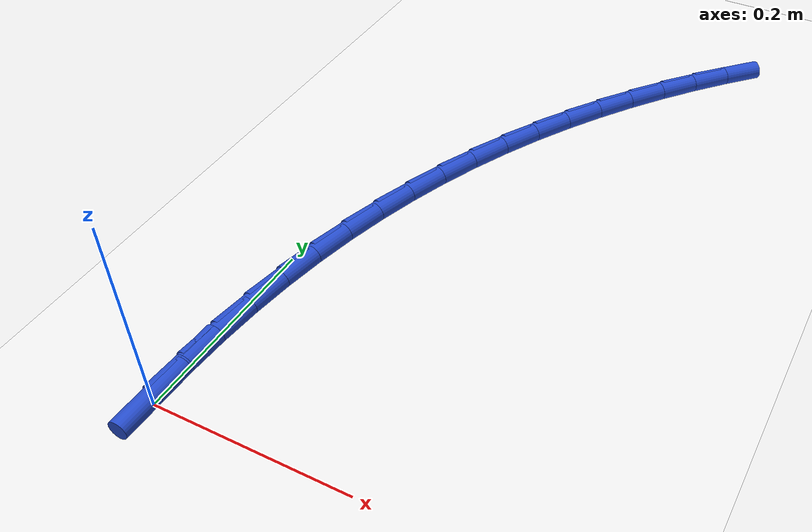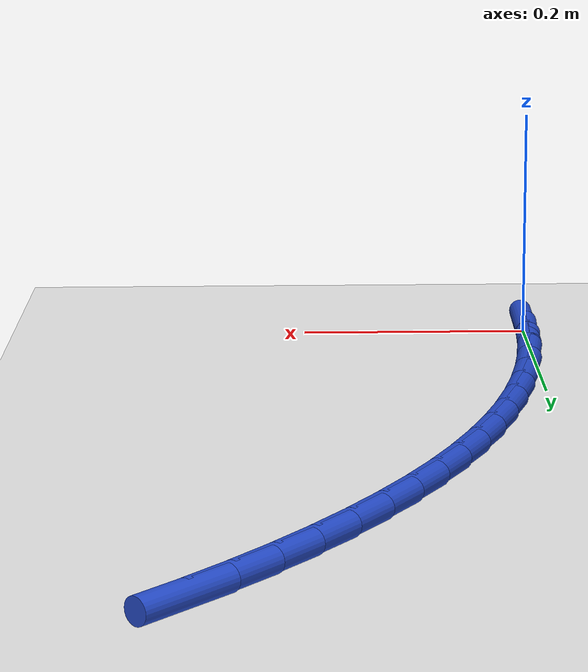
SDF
<sdf version="1.6">
 <world name="default">
  <model name="ground_plane">
   <static>1</static>
   <link name="link">
    <collision name="collision">
     <geometry><plane><normal>0 0 1</normal><size>100 100</size></plane></geometry>
     <surface><friction><ode><mu>100</mu><mu2>50</mu2></ode></friction></surface>
    </collision>
    <visual name="visual">
     <cast_shadows>0</cast_shadows>
     <geometry><plane><normal>0 0 1</normal><size>100 100</size></plane></geometry>
     <material>
      <script><uri>file://media/materials/scripts/gazebo.material</uri><name>Gazebo/WhiteGlow</name></script>
     </material>
    </visual>
   </link>
  </model>
  <model name="line">
   <link name="link_1">
    <pose>0.0008242828212076035 0.04224080998406334 0.01 0 1.57 1.509834602419437</pose>
    <collision name="collision">
     <geometry><cylinder><radius>0.01</radius><length>0.08</length></cylinder></geometry>
    </collision>
    <visual name="visual">
     <material>
      <script><name>Gazebo/Blue</name><uri>file://media/materials/scripts/gazebo.material</uri></script>
     </material>
     <geometry><cylinder><radius>0.01</radius><length>0.08</length></cylinder></geometry>
    </visual>
   </link>
   <link name="link_2">
    <pose>0.0033957350570593997 0.08436996587760281 0.01 0 1.57 1.468045484106311</pose>
    <collision name="collision">
     <geometry><cylinder><radius>0.01</radius><length>0.08</length></cylinder></geometry>
    </collision>
    <visual name="visual">
     <material>
      <script><name>Gazebo/Blue</name><uri>file://media/materials/scripts/gazebo.material</uri></script>
     </material>
     <geometry><cylinder><radius>0.01</radius><length>0.08</length></cylinder></geometry>
    </visual>
   </link>
   <link name="link_3">
    <pose>0.007720835602177713 0.1263148163408653 0.01 0 1.57 1.4258489322903987</pose>
    <collision name="collision">
     <geometry><cylinder><radius>0.01</radius><length>0.08</length></cylinder></geometry>
    </collision>
    <visual name="visual">
     <material>
      <script><name>Gazebo/Blue</name><uri>file://media/materials/scripts/gazebo.material</uri></script>
     </material>
     <geometry><cylinder><radius>0.01</radius><length>0.08</length></cylinder></geometry>
    </visual>
   </link>
   <link name="link_4">
    <pose>0.013806063351184826 0.1680027100340975 0.01 0 1.57 1.3831800137416523</pose>
    <collision name="collision">
     <geometry><cylinder><radius>0.01</radius><length>0.08</length></cylinder></geometry>
    </collision>
    <visual name="visual">
     <material>
      <script><name>Gazebo/Blue</name><uri>file://media/materials/scripts/gazebo.material</uri></script>
     </material>
     <geometry><cylinder><radius>0.01</radius><length>0.08</length></cylinder></geometry>
    </visual>
   </link>
   <link name="link_5">
    <pose>0.02165789719870302 0.20936099561754626 0.01 0 1.57 1.3399785192944504</pose>
    <collision name="collision">
     <geometry><cylinder><radius>0.01</radius><length>0.08</length></cylinder></geometry>
    </collision>
    <visual name="visual">
     <material>
      <script><name>Gazebo/Blue</name><uri>file://media/materials/scripts/gazebo.material</uri></script>
     </material>
     <geometry><cylinder><radius>0.01</radius><length>0.08</length></cylinder></geometry>
    </visual>
   </link>
   <link name="link_6">
    <pose>0.031282816039354594 0.2503170217514585 0.01 0 1.57 1.296190110756127</pose>
    <collision name="collision">
     <geometry><cylinder><radius>0.01</radius><length>0.08</length></cylinder></geometry>
    </collision>
    <visual name="visual">
     <material>
      <script><name>Gazebo/Blue</name><uri>file://media/materials/scripts/gazebo.material</uri></script>
     </material>
     <geometry><cylinder><radius>0.01</radius><length>0.08</length></cylinder></geometry>
    </visual>
   </link>
   <link name="link_7">
    <pose>0.04268729876776183 0.2907981370960808 0.01 0 1.57 1.2517675752675816</pose>
    <collision name="collision">
     <geometry><cylinder><radius>0.01</radius><length>0.08</length></cylinder></geometry>
    </collision>
    <visual name="visual">
     <material>
      <script><name>Gazebo/Blue</name><uri>file://media/materials/scripts/gazebo.material</uri></script>
     </material>
     <geometry><cylinder><radius>0.01</radius><length>0.08</length></cylinder></geometry>
    </visual>
   </link>
   <link name="link_8">
    <pose>0.055877824278547 0.3307316903116603 0.01 0 1.57 1.2066721761818502</pose>
    <collision name="collision">
     <geometry><cylinder><radius>0.01</radius><length>0.08</length></cylinder></geometry>
    </collision>
    <visual name="visual">
     <material>
      <script><name>Gazebo/Blue</name><uri>file://media/materials/scripts/gazebo.material</uri></script>
     </material>
     <geometry><cylinder><radius>0.01</radius><length>0.08</length></cylinder></geometry>
    </visual>
   </link>
   <link name="link_9">
    <pose>0.07086087146633238 0.3700450300584434 0.01 0 1.57 1.1609838515399316</pose>
    <collision name="collision">
     <geometry><cylinder><radius>0.01</radius><length>0.08</length></cylinder></geometry>
    </collision>
    <visual name="visual">
     <material>
      <script><name>Gazebo/Blue</name><uri>file://media/materials/scripts/gazebo.material</uri></script>
     </material>
     <geometry><cylinder><radius>0.01</radius><length>0.08</length></cylinder></geometry>
    </visual>
   </link>
   <link name="link_10">
    <pose>0.0876385577204264 0.4086669607770966 0.01 0 1.57 1.1159029134052514</pose>
    <collision name="collision">
     <geometry><cylinder><radius>0.01</radius><length>0.08</length></cylinder></geometry>
    </collision>
    <visual name="visual">
     <material>
      <script><name>Gazebo/Blue</name><uri>file://media/materials/scripts/gazebo.material</uri></script>
     </material>
     <geometry><cylinder><radius>0.01</radius><length>0.08</length></cylinder></geometry>
    </visual>
   </link>
   <link name="link_11">
    <pose>0.10616376814459691 0.4465427196286702 0.01 0 1.57 1.0721512233106378</pose>
    <collision name="collision">
     <geometry><cylinder><radius>0.01</radius><length>0.08</length></cylinder></geometry>
    </collision>
    <visual name="visual">
     <material>
      <script><name>Gazebo/Blue</name><uri>file://media/materials/scripts/gazebo.material</uri></script>
     </material>
     <geometry><cylinder><radius>0.01</radius><length>0.08</length></cylinder></geometry>
    </visual>
   </link>
   <link name="link_12">
    <pose>0.12635830953603905 0.48362791707125663 0.01 0 1.57 1.0296683034240788</pose>
    <collision name="collision">
     <geometry><cylinder><radius>0.01</radius><length>0.08</length></cylinder></geometry>
    </collision>
    <visual name="visual">
     <material>
      <script><name>Gazebo/Blue</name><uri>file://media/materials/scripts/gazebo.material</uri></script>
     </material>
     <geometry><cylinder><radius>0.01</radius><length>0.08</length></cylinder></geometry>
    </visual>
   </link>
   <link name="link_13">
    <pose>0.14814350062086085 0.5198783264709993 0.01 0 1.57 0.9883684102926094</pose>
    <collision name="collision">
     <geometry><cylinder><radius>0.01</radius><length>0.08</length></cylinder></geometry>
    </collision>
    <visual name="visual">
     <material>
      <script><name>Gazebo/Blue</name><uri>file://media/materials/scripts/gazebo.material</uri></script>
     </material>
     <geometry><cylinder><radius>0.01</radius><length>0.08</length></cylinder></geometry>
    </visual>
   </link>
   <link name="link_14">
    <pose>0.17144066012517065 0.5552497211940419 0.01 0 1.57 0.9481554389620419</pose>
    <collision name="collision">
     <geometry><cylinder><radius>0.01</radius><length>0.08</length></cylinder></geometry>
    </collision>
    <visual name="visual">
     <material>
      <script><name>Gazebo/Blue</name><uri>file://media/materials/scripts/gazebo.material</uri></script>
     </material>
     <geometry><cylinder><radius>0.01</radius><length>0.08</length></cylinder></geometry>
    </visual>
   </link>
   <link name="link_15">
    <pose>0.19617110677507654 0.589697874606528 0.01 0 1.57 0.9089251842007465</pose>
    <collision name="collision">
     <geometry><cylinder><radius>0.01</radius><length>0.08</length></cylinder></geometry>
    </collision>
    <visual name="visual">
     <material>
      <script><name>Gazebo/Blue</name><uri>file://media/materials/scripts/gazebo.material</uri></script>
     </material>
     <geometry><cylinder><radius>0.01</radius><length>0.08</length></cylinder></geometry>
    </visual>
   </link>
   <link name="link_16">
    <pose>0.22225615929668677 0.6231785600746013 0.01 0 1.57 0.8705671381486784</pose>
    <collision name="collision">
     <geometry><cylinder><radius>0.01</radius><length>0.08</length></cylinder></geometry>
    </collision>
    <visual name="visual">
     <material>
      <script><name>Gazebo/Blue</name><uri>file://media/materials/scripts/gazebo.material</uri></script>
     </material>
     <geometry><cylinder><radius>0.01</radius><length>0.08</length></cylinder></geometry>
    </visual>
   </link>
   <link name="link_17">
    <pose>0.2496171364161094 0.655647550964405 0.01 0 1.57 0.8329658527944049</pose>
    <collision name="collision">
     <geometry><cylinder><radius>0.01</radius><length>0.08</length></cylinder></geometry>
    </collision>
    <visual name="visual">
     <material>
      <script><name>Gazebo/Blue</name><uri>file://media/materials/scripts/gazebo.material</uri></script>
     </material>
     <geometry><cylinder><radius>0.01</radius><length>0.08</length></cylinder></geometry>
    </visual>
   </link>
   <link name="link_18">
    <pose>0.2781753568594526 0.6870606206420827 0.01 0 1.57 0.7960019078720568</pose>
    <collision name="collision">
     <geometry><cylinder><radius>0.01</radius><length>0.08</length></cylinder></geometry>
    </collision>
    <visual name="visual">
     <material>
      <script><name>Gazebo/Blue</name><uri>file://media/materials/scripts/gazebo.material</uri></script>
     </material>
     <geometry><cylinder><radius>0.01</radius><length>0.08</length></cylinder></geometry>
    </visual>
   </link>
   <link name="link_160">
    <pose>2.7755575615628914e-17 1.8041124150158794e-16 0.01 0 1.57 1.5513084257967285</pose>
    <collision name="collision">
     <geometry><cylinder><radius>0.01</radius><length>0.08</length></cylinder></geometry>
    </collision>
    <visual name="visual">
     <material>
      <script><name>Gazebo/Blue</name><uri>file://media/materials/scripts/gazebo.material</uri></script>
     </material>
     <geometry><cylinder><radius>0.01</radius><length>0.08</length></cylinder></geometry>
    </visual>
   </link>
   <link name="link_161">
    <pose>0.0008232074293165227 0.042236627467128834 0.01 0 1.57 1.5513084257967287</pose>
    <collision name="collision">
     <geometry><cylinder><radius>0.01</radius><length>0.08</length></cylinder></geometry>
    </collision>
    <visual name="visual">
     <material>
      <script><name>Gazebo/Blue</name><uri>file://media/materials/scripts/gazebo.material</uri></script>
     </material>
     <geometry><cylinder><radius>0.01</radius><length>0.08</length></cylinder></geometry>
    </visual>
   </link>
  </model>
 </world>
</sdf>
